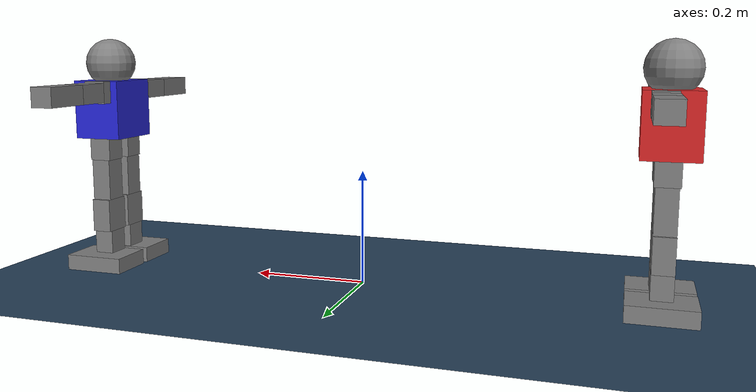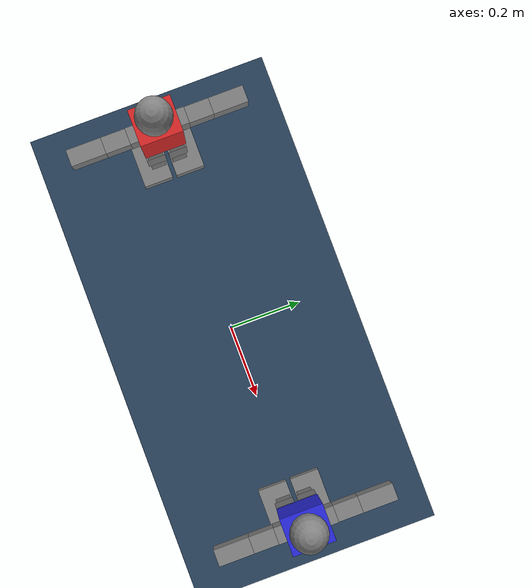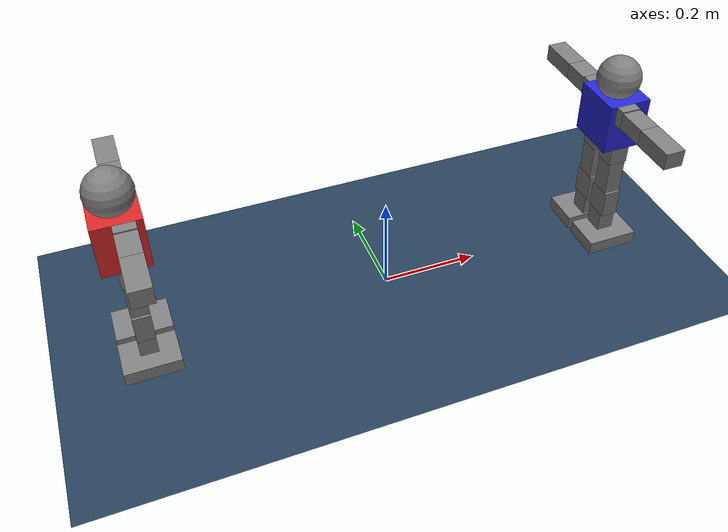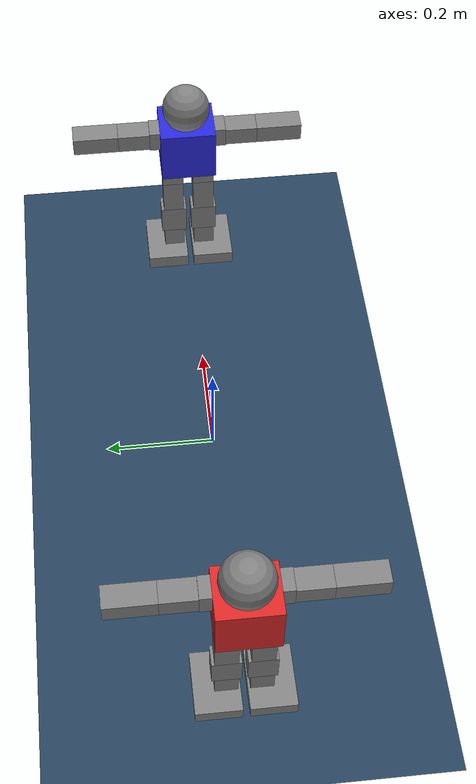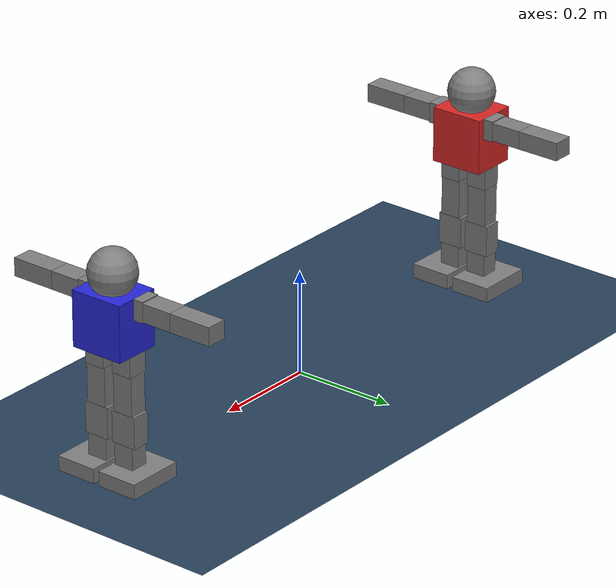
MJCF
<mujoco model="alpha1_fight">

  <compiler angle="radian" autolimits="true"/>
  <option timestep="0.005"
          solver="Newton"
          iterations="50"/>
  <default>
    <geom solref="0.05 1" solimp="0.9 0.95 0.001"/>
    <joint damping="0.25" armature="0.01"/>
  </default>

  <asset>
    <texture type="2d" name="groundplane" builtin="checker"
             rgb1="0.2 0.3 0.4" rgb2="0.1 0.2 0.3"
             markrgb="0.8 0.8 0.8" width="300" height="300"/>
    <material name="groundplane" texture="groundplane" texuniform="true"
              texrepeat="5 5" reflectance="0.2"/>
  </asset>

  <contact>
    <exclude body1="red_root" body2="red_Head_link"/>
    <exclude body1="red_root" body2="red_Left_Lateral_Thigh_link"/>
    <exclude body1="red_root" body2="red_Left_Thigt_link"/>
    <exclude body1="red_Left_Lateral_Thigh_link" body2="red_Left_Thigt_link"/>
    <exclude body1="red_root" body2="red_Left_Leg_Link"/>
    <exclude body1="red_Left_Lateral_Thigh_link" body2="red_Left_Leg_Link"/>
    <exclude body1="red_Left_Thigt_link" body2="red_Left_Leg_Link"/>
    <exclude body1="red_root" body2="red_Left_Ankle_link"/>
    <exclude body1="red_Left_Lateral_Thigh_link" body2="red_Left_Ankle_link"/>
    <exclude body1="red_Left_Thigt_link" body2="red_Left_Ankle_link"/>
    <exclude body1="red_Left_Leg_Link" body2="red_Left_Ankle_link"/>
    <exclude body1="red_root" body2="red_Left_Feet_link"/>
    <exclude body1="red_Left_Lateral_Thigh_link" body2="red_Left_Feet_link"/>
    <exclude body1="red_Left_Thigt_link" body2="red_Left_Feet_link"/>
    <exclude body1="red_Left_Leg_Link" body2="red_Left_Feet_link"/>
    <exclude body1="red_Left_Ankle_link" body2="red_Left_Feet_link"/>
    <exclude body1="red_root" body2="red_Left_Shoulder_link"/>
    <exclude body1="red_root" body2="red_Left_Arm_link"/>
    <exclude body1="red_Left_Shoulder_link" body2="red_Left_Arm_link"/>
    <exclude body1="red_root" body2="red_Left_Hand_link"/>
    <exclude body1="red_Left_Shoulder_link" body2="red_Left_Hand_link"/>
    <exclude body1="red_Left_Arm_link" body2="red_Left_Hand_link"/>
    <exclude body1="red_root" body2="red_Right_Lateral_Thigh_link"/>
    <exclude body1="red_root" body2="red_Right_Thigh_link"/>
    <exclude body1="red_Right_Lateral_Thigh_link" body2="red_Right_Thigh_link"/>
    <exclude body1="red_root" body2="red_Right_Leg_link"/>
    <exclude body1="red_Right_Lateral_Thigh_link" body2="red_Right_Leg_link"/>
    <exclude body1="red_Right_Thigh_link" body2="red_Right_Leg_link"/>
    <exclude body1="red_root" body2="red_Right_Ankle_link"/>
    <exclude body1="red_Right_Lateral_Thigh_link" body2="red_Right_Ankle_link"/>
    <exclude body1="red_Right_Thigh_link" body2="red_Right_Ankle_link"/>
    <exclude body1="red_Right_Leg_link" body2="red_Right_Ankle_link"/>
    <exclude body1="red_root" body2="red_Right_Feet_link"/>
    <exclude body1="red_Right_Lateral_Thigh_link" body2="red_Right_Feet_link"/>
    <exclude body1="red_Right_Thigh_link" body2="red_Right_Feet_link"/>
    <exclude body1="red_Right_Leg_link" body2="red_Right_Feet_link"/>
    <exclude body1="red_Right_Ankle_link" body2="red_Right_Feet_link"/>
    <exclude body1="red_root" body2="red_Right_Shoulder_link"/>
    <exclude body1="red_root" body2="red_Right_Arm_link"/>
    <exclude body1="red_Right_Shoulder_link" body2="red_Right_Arm_link"/>
    <exclude body1="red_root" body2="red_Right_Hand_link"/>
    <exclude body1="red_Right_Shoulder_link" body2="red_Right_Hand_link"/>
    <exclude body1="red_Right_Arm_link" body2="red_Right_Hand_link"/>
    <exclude body1="blue_root" body2="blue_Head_link"/>
    <exclude body1="blue_root" body2="blue_Left_Lateral_Thigh_link"/>
    <exclude body1="blue_root" body2="blue_Left_Thigt_link"/>
    <exclude body1="blue_Left_Lateral_Thigh_link" body2="blue_Left_Thigt_link"/>
    <exclude body1="blue_root" body2="blue_Left_Leg_Link"/>
    <exclude body1="blue_Left_Lateral_Thigh_link" body2="blue_Left_Leg_Link"/>
    <exclude body1="blue_Left_Thigt_link" body2="blue_Left_Leg_Link"/>
    <exclude body1="blue_root" body2="blue_Left_Ankle_link"/>
    <exclude body1="blue_Left_Lateral_Thigh_link" body2="blue_Left_Ankle_link"/>
    <exclude body1="blue_Left_Thigt_link" body2="blue_Left_Ankle_link"/>
    <exclude body1="blue_Left_Leg_Link" body2="blue_Left_Ankle_link"/>
    <exclude body1="blue_root" body2="blue_Left_Feet_link"/>
    <exclude body1="blue_Left_Lateral_Thigh_link" body2="blue_Left_Feet_link"/>
    <exclude body1="blue_Left_Thigt_link" body2="blue_Left_Feet_link"/>
    <exclude body1="blue_Left_Leg_Link" body2="blue_Left_Feet_link"/>
    <exclude body1="blue_Left_Ankle_link" body2="blue_Left_Feet_link"/>
    <exclude body1="blue_root" body2="blue_Left_Shoulder_link"/>
    <exclude body1="blue_root" body2="blue_Left_Arm_link"/>
    <exclude body1="blue_Left_Shoulder_link" body2="blue_Left_Arm_link"/>
    <exclude body1="blue_root" body2="blue_Left_Hand_link"/>
    <exclude body1="blue_Left_Shoulder_link" body2="blue_Left_Hand_link"/>
    <exclude body1="blue_Left_Arm_link" body2="blue_Left_Hand_link"/>
    <exclude body1="blue_root" body2="blue_Right_Lateral_Thigh_link"/>
    <exclude body1="blue_root" body2="blue_Right_Thigh_link"/>
    <exclude body1="blue_Right_Lateral_Thigh_link" body2="blue_Right_Thigh_link"/>
    <exclude body1="blue_root" body2="blue_Right_Leg_link"/>
    <exclude body1="blue_Right_Lateral_Thigh_link" body2="blue_Right_Leg_link"/>
    <exclude body1="blue_Right_Thigh_link" body2="blue_Right_Leg_link"/>
    <exclude body1="blue_root" body2="blue_Right_Ankle_link"/>
    <exclude body1="blue_Right_Lateral_Thigh_link" body2="blue_Right_Ankle_link"/>
    <exclude body1="blue_Right_Thigh_link" body2="blue_Right_Ankle_link"/>
    <exclude body1="blue_Right_Leg_link" body2="blue_Right_Ankle_link"/>
    <exclude body1="blue_root" body2="blue_Right_Feet_link"/>
    <exclude body1="blue_Right_Lateral_Thigh_link" body2="blue_Right_Feet_link"/>
    <exclude body1="blue_Right_Thigh_link" body2="blue_Right_Feet_link"/>
    <exclude body1="blue_Right_Leg_link" body2="blue_Right_Feet_link"/>
    <exclude body1="blue_Right_Ankle_link" body2="blue_Right_Feet_link"/>
    <exclude body1="blue_root" body2="blue_Right_Shoulder_link"/>
    <exclude body1="blue_root" body2="blue_Right_Arm_link"/>
    <exclude body1="blue_Right_Shoulder_link" body2="blue_Right_Arm_link"/>
    <exclude body1="blue_root" body2="blue_Right_Hand_link"/>
    <exclude body1="blue_Right_Shoulder_link" body2="blue_Right_Hand_link"/>
    <exclude body1="blue_Right_Arm_link" body2="blue_Right_Hand_link"/>
  </contact>

  <worldbody>
    <light pos="0 0 3" dir="0 0 -1" diffuse="0.8 0.8 0.8"/>
    <geom name="floor" size="3 3 0.1" type="plane" material="groundplane"
          condim="3" friction="1 0.1 0.01"/>
    <body name="red_root" pos="-0.5 0 0.298" quat="1.000000 0.000000 0.000000 0.000000">
      <freejoint name="red_freejoint"/>
      <geom name="red_Body_link_col0" type="box" size="0.045 0.0525 0.0535" pos="0.0 0.0 0.0" quat="1.000000 0.000000 0.000000 0.000000" rgba="0.85 0.15 0.15 1" condim="3"/>
      <inertial pos="0.0 0.0 0.0" mass="0.42" diaginertia="0.00078659 0.000684215 0.000669375"/>
      <body name="red_Head_link" pos="0.0 0.0 0.0855" quat="1.000000 0.000000 0.000000 0.000000">
        <geom name="red_Head_link_col0" type="sphere" size="0.045" pos="0.0 0.0 0.0" condim="3"/>
        <inertial pos="0.0 0.0 0.0" mass="0.066" diaginertia="3.7125e-05 3.7125e-05 3.7125e-05"/>
      </body>
      <body name="red_Left_Lateral_Thigh_link" pos="0.0025 0.03 -0.0535" quat="0.707105 0.000000 0.707108 0.000000">
        <joint name="red_Left_Lateral_Thigh_link_joint" type="hinge" axis="0.0 0.0 1.0" range="-1.0 1.93" frictionloss="0.15"/>
        <geom name="red_Left_Lateral_Thigh_link_col0" type="box" size="0.02 0.02 0.02" pos="0.02 0.0 0.0" quat="0.707105 0.000000 -0.707108 0.000000" condim="3"/>
        <inertial pos="0.0 0.0 0.0" mass="0.07" diaginertia="1.8667e-05 1.8667e-05 1.8667e-05"/>
        <body name="red_Left_Thigt_link" pos="0.0395 0.0 0.0" quat="0.499998 0.500000 -0.500000 0.500002">
          <joint name="red_Left_Thigt_link_joint" type="hinge" axis="0.0 0.0 1.0" range="-1.57 1.57" frictionloss="0.15"/>
          <geom name="red_Left_Thigt_link_col0" type="box" size="0.0175 0.02 0.0375" pos="0.0 -0.0375 0.0" quat="0.707105 -0.707108 0.000000 0.000000" condim="3"/>
          <inertial pos="0.0 0.0 0.0" mass="0.115" diaginertia="6.924e-05 6.5646e-05 2.7073e-05"/>
          <body name="red_Left_Leg_Link" pos="0.0 -0.075 0.0" quat="1.000000 0.000000 0.000000 0.000000">
            <joint name="red_Left_Leg_Link_joint" type="hinge" axis="0.0 0.0 1.0" range="-2.3 0.7" frictionloss="0.15"/>
            <geom name="red_Left_Leg_Link_col0" type="box" size="0.0175 0.025 0.03" pos="0.0 -0.03 0.0" quat="0.707105 -0.707108 0.000000 0.000000" condim="3"/>
            <inertial pos="0.0 0.0 0.0" mass="0.11" diaginertia="5.5917e-05 4.4229e-05 3.4146e-05"/>
            <body name="red_Left_Ankle_link" pos="0.0 -0.06 0.0" quat="1.000000 0.000000 0.000000 0.000000">
              <joint name="red_Right_Ankle_link_joint" type="hinge" axis="0.0 0.0 1.0" range="-1.57 1.57" frictionloss="0.15"/>
              <geom name="red_Left_Ankle_link_col0" type="box" size="0.0175 0.02 0.021" pos="0.0 -0.021 0.0" quat="0.707105 -0.707108 0.000000 0.000000" condim="3"/>
              <inertial pos="0.0 0.0 0.0" mass="0.055" diaginertia="1.5418e-05 1.37e-05 1.2948e-05"/>
              <body name="red_Left_Feet_link" pos="0.0 -0.047 0.0" quat="0.499998 -0.500000 0.500002 -0.500000">
                <joint name="red_Left_Feet_link_joint" type="hinge" axis="0.0 0.0 1.0" range="-1.57 0.43" frictionloss="0.15"/>
                <geom name="red_Left_Feet_link_col0" type="box" size="0.055 0.04 0.014" pos="0.009 0.016 0.0" quat="-0.707108 0.000002 0.707105 0.000002" condim="3"/>
                <inertial pos="0.0 0.0 0.0" mass="0.07" diaginertia="4.1907e-05 7.5157e-05 0.000107917"/>
              </body>
            </body>
          </body>
        </body>
      </body>
      <body name="red_Left_Shoulder_link" pos="0.012 0.0525 0.0335" quat="0.707105 0.707108 0.000000 0.000000">
        <joint name="red_Left_Shoulder_link_joint" type="hinge" axis="0.0 0.0 1.0" range="0.0 3.1416" frictionloss="0.15"/>
        <geom name="red_Left_Shoulder_link_col0" type="box" size="0.02 0.01 0.02" pos="0.0 -0.0 -0.01" quat="0.707105 -0.707108 0.000000 0.000000" condim="3"/>
        <inertial pos="0.0 0.0 0.0" mass="0.06" diaginertia="1e-05 1.6e-05 1e-05"/>
        <body name="red_Left_Arm_link" pos="0.0 -0.0 -0.02" quat="0.499998 -0.500000 0.500002 -0.500000">
          <joint name="red_Left_Arm_link_joint" type="hinge" axis="0.0 0.0 1.0" range="-1.57 1.57" frictionloss="0.15"/>
          <geom name="red_Left_Arm_link_col0" type="box" size="0.02 0.03 0.0175" pos="0.0 0.03 0.0" quat="0.707105 0.000000 -0.707108 0.000000" condim="3"/>
          <inertial pos="0.0 0.0 0.0" mass="0.0475" diaginertia="1.9099e-05 1.1182e-05 2.0583e-05"/>
          <body name="red_Left_Hand_link" pos="0.0 0.06 0.0" quat="1.000000 0.000000 0.000000 0.000000">
            <joint name="red_Left_Hand_link_joint" type="hinge" axis="0.0 0.0 1.0" range="-1.57 1.57" frictionloss="0.15"/>
            <geom name="red_Left_Hand_link_col0" type="box" size="0.02 0.0425 0.0175" pos="0.0 0.0425 0.0" quat="0.707105 0.000000 -0.707108 0.000000" condim="3"/>
            <inertial pos="0.0 0.0 0.0" mass="0.02" diaginertia="1.4083e-05 4.708e-06 1.4708e-05"/>
          </body>
        </body>
      </body>
      <body name="red_Right_Lateral_Thigh_link" pos="0.0025 -0.03 -0.0535" quat="0.707105 0.000000 0.707108 0.000000">
        <joint name="red_Right_Lateral_Thigh_link_joint" type="hinge" axis="0.0 0.0 1.0" range="-1.93 1.0" frictionloss="0.15"/>
        <geom name="red_Right_Lateral_Thigh_link_col0" type="box" size="0.02 0.02 0.02" pos="0.02 0.0 0.0" quat="0.707105 0.000000 -0.707108 0.000000" condim="3"/>
        <inertial pos="0.0 0.0 0.0" mass="0.07" diaginertia="1.8667e-05 1.8667e-05 1.8667e-05"/>
        <body name="red_Right_Thigh_link" pos="0.0395 0.0 0.0" quat="0.499998 0.500000 -0.500000 0.500002">
          <joint name="red_Right_Thigh_link_joint" type="hinge" axis="0.0 0.0 1.0" range="-1.57 1.57" frictionloss="0.15"/>
          <geom name="red_Right_Thigh_link_col0" type="box" size="0.0175 0.02 0.0375" pos="0.0 -0.0375 0.0" quat="0.707105 -0.707108 0.000000 0.000000" condim="3"/>
          <inertial pos="0.0 0.0 0.0" mass="0.115" diaginertia="6.924e-05 6.5646e-05 2.7073e-05"/>
          <body name="red_Right_Leg_link" pos="0.0 -0.075 0.0" quat="1.000000 0.000000 0.000000 0.000000">
            <joint name="red_Right_Leg_link_joint" type="hinge" axis="0.0 0.0 1.0" range="-2.3 0.7" frictionloss="0.15"/>
            <geom name="red_Right_Leg_link_col0" type="box" size="0.0175 0.025 0.03" pos="0.0 -0.03 0.0" quat="0.707105 -0.707108 0.000000 0.000000" condim="3"/>
            <inertial pos="0.0 0.0 0.0" mass="0.11" diaginertia="5.5917e-05 4.4229e-05 3.4146e-05"/>
            <body name="red_Right_Ankle_link" pos="0.0 -0.06 0.0" quat="1.000000 0.000000 0.000000 0.000000">
              <joint name="red_Right_ankle_link_joint" type="hinge" axis="0.0 0.0 1.0" range="-1.57 1.57" frictionloss="0.15"/>
              <geom name="red_Right_Ankle_link_col0" type="box" size="0.0175 0.02 0.021" pos="0.0 -0.021 0.0" quat="0.707105 -0.707108 0.000000 0.000000" condim="3"/>
              <inertial pos="0.0 0.0 0.0" mass="0.055" diaginertia="1.5418e-05 1.37e-05 1.2948e-05"/>
              <body name="red_Right_Feet_link" pos="0.0 -0.047 0.0" quat="0.499998 -0.500000 0.500002 -0.500000">
                <joint name="red_Right_Feet_link_joint" type="hinge" axis="0.0 0.0 1.0" range="-0.43 1.57" frictionloss="0.15"/>
                <geom name="red_Right_Feet_link_col0" type="box" size="0.055 0.04 0.014" pos="0.009 -0.016 0.0" quat="-0.707108 0.000002 0.707105 0.000002" condim="3"/>
                <inertial pos="0.0 0.0 0.0" mass="0.07" diaginertia="4.1907e-05 7.5157e-05 0.000107917"/>
              </body>
            </body>
          </body>
        </body>
      </body>
      <body name="red_Right_Shoulder_link" pos="0.012 -0.0525 0.0335" quat="0.707105 0.707108 0.000000 0.000000">
        <joint name="red_Right_Shoulder_link_joint" type="hinge" axis="0.0 0.0 1.0" range="0.0 3.1416" frictionloss="0.15"/>
        <geom name="red_Right_Shoulder_link_col0" type="box" size="0.02 0.01 0.02" pos="0.0 0.0 0.01" quat="0.707105 -0.707108 0.000000 0.000000" condim="3"/>
        <inertial pos="0.0 0.0 0.0" mass="0.06" diaginertia="1e-05 1.6e-05 1e-05"/>
        <body name="red_Right_Arm_link" pos="0.0 0.0 0.02" quat="0.499998 -0.500000 0.500002 -0.500000">
          <joint name="red_Right_Arm_link_joint" type="hinge" axis="0.0 0.0 1.0" range="-1.57 1.57" frictionloss="0.15"/>
          <geom name="red_Right_Arm_link_col0" type="box" size="0.02 0.03 0.0175" pos="0.0 -0.03 0.0" quat="0.707105 0.000000 -0.707108 0.000000" condim="3"/>
          <inertial pos="0.0 0.0 0.0" mass="0.0475" diaginertia="1.9099e-05 1.1182e-05 2.0583e-05"/>
          <body name="red_Right_Hand_link" pos="0.0 -0.06 0.0" quat="1.000000 0.000000 0.000000 0.000000">
            <joint name="red_Right_Hand_link_joint" type="hinge" axis="0.0 0.0 1.0" range="-1.57 1.57" frictionloss="0.15"/>
            <geom name="red_Right_Hand_link_col0" type="box" size="0.02 0.0425 0.0175" pos="0.0 -0.0425 0.0" quat="0.707105 0.000000 -0.707108 0.000000" condim="3"/>
            <inertial pos="0.0 0.0 0.0" mass="0.02" diaginertia="1.4083e-05 4.708e-06 1.4708e-05"/>
          </body>
        </body>
      </body>
    </body>
    <body name="blue_root" pos="0.5 0 0.298" quat="0.000001 0.000000 0.000000 1.000000">
      <freejoint name="blue_freejoint"/>
      <geom name="blue_Body_link_col0" type="box" size="0.045 0.0525 0.0535" pos="0.0 0.0 0.0" quat="1.000000 0.000000 0.000000 0.000000" rgba="0.15 0.15 0.85 1" condim="3"/>
      <inertial pos="0.0 0.0 0.0" mass="0.42" diaginertia="0.00078659 0.000684215 0.000669375"/>
      <body name="blue_Head_link" pos="0.0 0.0 0.0855" quat="1.000000 0.000000 0.000000 0.000000">
        <geom name="blue_Head_link_col0" type="sphere" size="0.045" pos="0.0 0.0 0.0" condim="3"/>
        <inertial pos="0.0 0.0 0.0" mass="0.066" diaginertia="3.7125e-05 3.7125e-05 3.7125e-05"/>
      </body>
      <body name="blue_Left_Lateral_Thigh_link" pos="0.0025 0.03 -0.0535" quat="0.707105 0.000000 0.707108 0.000000">
        <joint name="blue_Left_Lateral_Thigh_link_joint" type="hinge" axis="0.0 0.0 1.0" range="-1.0 1.93" frictionloss="0.15"/>
        <geom name="blue_Left_Lateral_Thigh_link_col0" type="box" size="0.02 0.02 0.02" pos="0.02 0.0 0.0" quat="0.707105 0.000000 -0.707108 0.000000" condim="3"/>
        <inertial pos="0.0 0.0 0.0" mass="0.07" diaginertia="1.8667e-05 1.8667e-05 1.8667e-05"/>
        <body name="blue_Left_Thigt_link" pos="0.0395 0.0 0.0" quat="0.499998 0.500000 -0.500000 0.500002">
          <joint name="blue_Left_Thigt_link_joint" type="hinge" axis="0.0 0.0 1.0" range="-1.57 1.57" frictionloss="0.15"/>
          <geom name="blue_Left_Thigt_link_col0" type="box" size="0.0175 0.02 0.0375" pos="0.0 -0.0375 0.0" quat="0.707105 -0.707108 0.000000 0.000000" condim="3"/>
          <inertial pos="0.0 0.0 0.0" mass="0.115" diaginertia="6.924e-05 6.5646e-05 2.7073e-05"/>
          <body name="blue_Left_Leg_Link" pos="0.0 -0.075 0.0" quat="1.000000 0.000000 0.000000 0.000000">
            <joint name="blue_Left_Leg_Link_joint" type="hinge" axis="0.0 0.0 1.0" range="-2.3 0.7" frictionloss="0.15"/>
            <geom name="blue_Left_Leg_Link_col0" type="box" size="0.0175 0.025 0.03" pos="0.0 -0.03 0.0" quat="0.707105 -0.707108 0.000000 0.000000" condim="3"/>
            <inertial pos="0.0 0.0 0.0" mass="0.11" diaginertia="5.5917e-05 4.4229e-05 3.4146e-05"/>
            <body name="blue_Left_Ankle_link" pos="0.0 -0.06 0.0" quat="1.000000 0.000000 0.000000 0.000000">
              <joint name="blue_Right_Ankle_link_joint" type="hinge" axis="0.0 0.0 1.0" range="-1.57 1.57" frictionloss="0.15"/>
              <geom name="blue_Left_Ankle_link_col0" type="box" size="0.0175 0.02 0.021" pos="0.0 -0.021 0.0" quat="0.707105 -0.707108 0.000000 0.000000" condim="3"/>
              <inertial pos="0.0 0.0 0.0" mass="0.055" diaginertia="1.5418e-05 1.37e-05 1.2948e-05"/>
              <body name="blue_Left_Feet_link" pos="0.0 -0.047 0.0" quat="0.499998 -0.500000 0.500002 -0.500000">
                <joint name="blue_Left_Feet_link_joint" type="hinge" axis="0.0 0.0 1.0" range="-1.57 0.43" frictionloss="0.15"/>
                <geom name="blue_Left_Feet_link_col0" type="box" size="0.055 0.04 0.014" pos="0.009 0.016 0.0" quat="-0.707108 0.000002 0.707105 0.000002" condim="3"/>
                <inertial pos="0.0 0.0 0.0" mass="0.07" diaginertia="4.1907e-05 7.5157e-05 0.000107917"/>
              </body>
            </body>
          </body>
        </body>
      </body>
      <body name="blue_Left_Shoulder_link" pos="0.012 0.0525 0.0335" quat="0.707105 0.707108 0.000000 0.000000">
        <joint name="blue_Left_Shoulder_link_joint" type="hinge" axis="0.0 0.0 1.0" range="0.0 3.1416" frictionloss="0.15"/>
        <geom name="blue_Left_Shoulder_link_col0" type="box" size="0.02 0.01 0.02" pos="0.0 -0.0 -0.01" quat="0.707105 -0.707108 0.000000 0.000000" condim="3"/>
        <inertial pos="0.0 0.0 0.0" mass="0.06" diaginertia="1e-05 1.6e-05 1e-05"/>
        <body name="blue_Left_Arm_link" pos="0.0 -0.0 -0.02" quat="0.499998 -0.500000 0.500002 -0.500000">
          <joint name="blue_Left_Arm_link_joint" type="hinge" axis="0.0 0.0 1.0" range="-1.57 1.57" frictionloss="0.15"/>
          <geom name="blue_Left_Arm_link_col0" type="box" size="0.02 0.03 0.0175" pos="0.0 0.03 0.0" quat="0.707105 0.000000 -0.707108 0.000000" condim="3"/>
          <inertial pos="0.0 0.0 0.0" mass="0.0475" diaginertia="1.9099e-05 1.1182e-05 2.0583e-05"/>
          <body name="blue_Left_Hand_link" pos="0.0 0.06 0.0" quat="1.000000 0.000000 0.000000 0.000000">
            <joint name="blue_Left_Hand_link_joint" type="hinge" axis="0.0 0.0 1.0" range="-1.57 1.57" frictionloss="0.15"/>
            <geom name="blue_Left_Hand_link_col0" type="box" size="0.02 0.0425 0.0175" pos="0.0 0.0425 0.0" quat="0.707105 0.000000 -0.707108 0.000000" condim="3"/>
            <inertial pos="0.0 0.0 0.0" mass="0.02" diaginertia="1.4083e-05 4.708e-06 1.4708e-05"/>
          </body>
        </body>
      </body>
      <body name="blue_Right_Lateral_Thigh_link" pos="0.0025 -0.03 -0.0535" quat="0.707105 0.000000 0.707108 0.000000">
        <joint name="blue_Right_Lateral_Thigh_link_joint" type="hinge" axis="0.0 0.0 1.0" range="-1.93 1.0" frictionloss="0.15"/>
        <geom name="blue_Right_Lateral_Thigh_link_col0" type="box" size="0.02 0.02 0.02" pos="0.02 0.0 0.0" quat="0.707105 0.000000 -0.707108 0.000000" condim="3"/>
        <inertial pos="0.0 0.0 0.0" mass="0.07" diaginertia="1.8667e-05 1.8667e-05 1.8667e-05"/>
        <body name="blue_Right_Thigh_link" pos="0.0395 0.0 0.0" quat="0.499998 0.500000 -0.500000 0.500002">
          <joint name="blue_Right_Thigh_link_joint" type="hinge" axis="0.0 0.0 1.0" range="-1.57 1.57" frictionloss="0.15"/>
          <geom name="blue_Right_Thigh_link_col0" type="box" size="0.0175 0.02 0.0375" pos="0.0 -0.0375 0.0" quat="0.707105 -0.707108 0.000000 0.000000" condim="3"/>
          <inertial pos="0.0 0.0 0.0" mass="0.115" diaginertia="6.924e-05 6.5646e-05 2.7073e-05"/>
          <body name="blue_Right_Leg_link" pos="0.0 -0.075 0.0" quat="1.000000 0.000000 0.000000 0.000000">
            <joint name="blue_Right_Leg_link_joint" type="hinge" axis="0.0 0.0 1.0" range="-2.3 0.7" frictionloss="0.15"/>
            <geom name="blue_Right_Leg_link_col0" type="box" size="0.0175 0.025 0.03" pos="0.0 -0.03 0.0" quat="0.707105 -0.707108 0.000000 0.000000" condim="3"/>
            <inertial pos="0.0 0.0 0.0" mass="0.11" diaginertia="5.5917e-05 4.4229e-05 3.4146e-05"/>
            <body name="blue_Right_Ankle_link" pos="0.0 -0.06 0.0" quat="1.000000 0.000000 0.000000 0.000000">
              <joint name="blue_Right_ankle_link_joint" type="hinge" axis="0.0 0.0 1.0" range="-1.57 1.57" frictionloss="0.15"/>
              <geom name="blue_Right_Ankle_link_col0" type="box" size="0.0175 0.02 0.021" pos="0.0 -0.021 0.0" quat="0.707105 -0.707108 0.000000 0.000000" condim="3"/>
              <inertial pos="0.0 0.0 0.0" mass="0.055" diaginertia="1.5418e-05 1.37e-05 1.2948e-05"/>
              <body name="blue_Right_Feet_link" pos="0.0 -0.047 0.0" quat="0.499998 -0.500000 0.500002 -0.500000">
                <joint name="blue_Right_Feet_link_joint" type="hinge" axis="0.0 0.0 1.0" range="-0.43 1.57" frictionloss="0.15"/>
                <geom name="blue_Right_Feet_link_col0" type="box" size="0.055 0.04 0.014" pos="0.009 -0.016 0.0" quat="-0.707108 0.000002 0.707105 0.000002" condim="3"/>
                <inertial pos="0.0 0.0 0.0" mass="0.07" diaginertia="4.1907e-05 7.5157e-05 0.000107917"/>
              </body>
            </body>
          </body>
        </body>
      </body>
      <body name="blue_Right_Shoulder_link" pos="0.012 -0.0525 0.0335" quat="0.707105 0.707108 0.000000 0.000000">
        <joint name="blue_Right_Shoulder_link_joint" type="hinge" axis="0.0 0.0 1.0" range="0.0 3.1416" frictionloss="0.15"/>
        <geom name="blue_Right_Shoulder_link_col0" type="box" size="0.02 0.01 0.02" pos="0.0 0.0 0.01" quat="0.707105 -0.707108 0.000000 0.000000" condim="3"/>
        <inertial pos="0.0 0.0 0.0" mass="0.06" diaginertia="1e-05 1.6e-05 1e-05"/>
        <body name="blue_Right_Arm_link" pos="0.0 0.0 0.02" quat="0.499998 -0.500000 0.500002 -0.500000">
          <joint name="blue_Right_Arm_link_joint" type="hinge" axis="0.0 0.0 1.0" range="-1.57 1.57" frictionloss="0.15"/>
          <geom name="blue_Right_Arm_link_col0" type="box" size="0.02 0.03 0.0175" pos="0.0 -0.03 0.0" quat="0.707105 0.000000 -0.707108 0.000000" condim="3"/>
          <inertial pos="0.0 0.0 0.0" mass="0.0475" diaginertia="1.9099e-05 1.1182e-05 2.0583e-05"/>
          <body name="blue_Right_Hand_link" pos="0.0 -0.06 0.0" quat="1.000000 0.000000 0.000000 0.000000">
            <joint name="blue_Right_Hand_link_joint" type="hinge" axis="0.0 0.0 1.0" range="-1.57 1.57" frictionloss="0.15"/>
            <geom name="blue_Right_Hand_link_col0" type="box" size="0.02 0.0425 0.0175" pos="0.0 -0.0425 0.0" quat="0.707105 0.000000 -0.707108 0.000000" condim="3"/>
            <inertial pos="0.0 0.0 0.0" mass="0.02" diaginertia="1.4083e-05 4.708e-06 1.4708e-05"/>
          </body>
        </body>
      </body>
    </body>
  </worldbody>

  <actuator>
    <position name="act_red_Left_Lateral_Thigh_link_joint" joint="red_Left_Lateral_Thigh_link_joint" kp="8" kv="10" ctrlrange="-1.0 1.93" forcerange="-1.5 1.5"/>
    <position name="act_red_Left_Thigt_link_joint" joint="red_Left_Thigt_link_joint" kp="8" kv="10" ctrlrange="-1.57 1.57" forcerange="-1.5 1.5"/>
    <position name="act_red_Left_Leg_Link_joint" joint="red_Left_Leg_Link_joint" kp="8" kv="10" ctrlrange="-2.3 0.7" forcerange="-1.5 1.5"/>
    <position name="act_red_Right_Ankle_link_joint" joint="red_Right_Ankle_link_joint" kp="8" kv="10" ctrlrange="-1.57 1.57" forcerange="-1.5 1.5"/>
    <position name="act_red_Left_Feet_link_joint" joint="red_Left_Feet_link_joint" kp="8" kv="10" ctrlrange="-1.57 0.43" forcerange="-1.5 1.5"/>
    <position name="act_red_Left_Shoulder_link_joint" joint="red_Left_Shoulder_link_joint" kp="8" kv="10" ctrlrange="0.0 3.1416" forcerange="-1.5 1.5"/>
    <position name="act_red_Left_Arm_link_joint" joint="red_Left_Arm_link_joint" kp="8" kv="10" ctrlrange="-1.57 1.57" forcerange="-1.5 1.5"/>
    <position name="act_red_Left_Hand_link_joint" joint="red_Left_Hand_link_joint" kp="8" kv="10" ctrlrange="-1.57 1.57" forcerange="-1.5 1.5"/>
    <position name="act_red_Right_Lateral_Thigh_link_joint" joint="red_Right_Lateral_Thigh_link_joint" kp="8" kv="10" ctrlrange="-1.93 1.0" forcerange="-1.5 1.5"/>
    <position name="act_red_Right_Thigh_link_joint" joint="red_Right_Thigh_link_joint" kp="8" kv="10" ctrlrange="-1.57 1.57" forcerange="-1.5 1.5"/>
    <position name="act_red_Right_Leg_link_joint" joint="red_Right_Leg_link_joint" kp="8" kv="10" ctrlrange="-2.3 0.7" forcerange="-1.5 1.5"/>
    <position name="act_red_Right_ankle_link_joint" joint="red_Right_ankle_link_joint" kp="8" kv="10" ctrlrange="-1.57 1.57" forcerange="-1.5 1.5"/>
    <position name="act_red_Right_Feet_link_joint" joint="red_Right_Feet_link_joint" kp="8" kv="10" ctrlrange="-0.43 1.57" forcerange="-1.5 1.5"/>
    <position name="act_red_Right_Shoulder_link_joint" joint="red_Right_Shoulder_link_joint" kp="8" kv="10" ctrlrange="0.0 3.1416" forcerange="-1.5 1.5"/>
    <position name="act_red_Right_Arm_link_joint" joint="red_Right_Arm_link_joint" kp="8" kv="10" ctrlrange="-1.57 1.57" forcerange="-1.5 1.5"/>
    <position name="act_red_Right_Hand_link_joint" joint="red_Right_Hand_link_joint" kp="8" kv="10" ctrlrange="-1.57 1.57" forcerange="-1.5 1.5"/>
    <position name="act_blue_Left_Lateral_Thigh_link_joint" joint="blue_Left_Lateral_Thigh_link_joint" kp="8" kv="10" ctrlrange="-1.0 1.93" forcerange="-1.5 1.5"/>
    <position name="act_blue_Left_Thigt_link_joint" joint="blue_Left_Thigt_link_joint" kp="8" kv="10" ctrlrange="-1.57 1.57" forcerange="-1.5 1.5"/>
    <position name="act_blue_Left_Leg_Link_joint" joint="blue_Left_Leg_Link_joint" kp="8" kv="10" ctrlrange="-2.3 0.7" forcerange="-1.5 1.5"/>
    <position name="act_blue_Right_Ankle_link_joint" joint="blue_Right_Ankle_link_joint" kp="8" kv="10" ctrlrange="-1.57 1.57" forcerange="-1.5 1.5"/>
    <position name="act_blue_Left_Feet_link_joint" joint="blue_Left_Feet_link_joint" kp="8" kv="10" ctrlrange="-1.57 0.43" forcerange="-1.5 1.5"/>
    <position name="act_blue_Left_Shoulder_link_joint" joint="blue_Left_Shoulder_link_joint" kp="8" kv="10" ctrlrange="0.0 3.1416" forcerange="-1.5 1.5"/>
    <position name="act_blue_Left_Arm_link_joint" joint="blue_Left_Arm_link_joint" kp="8" kv="10" ctrlrange="-1.57 1.57" forcerange="-1.5 1.5"/>
    <position name="act_blue_Left_Hand_link_joint" joint="blue_Left_Hand_link_joint" kp="8" kv="10" ctrlrange="-1.57 1.57" forcerange="-1.5 1.5"/>
    <position name="act_blue_Right_Lateral_Thigh_link_joint" joint="blue_Right_Lateral_Thigh_link_joint" kp="8" kv="10" ctrlrange="-1.93 1.0" forcerange="-1.5 1.5"/>
    <position name="act_blue_Right_Thigh_link_joint" joint="blue_Right_Thigh_link_joint" kp="8" kv="10" ctrlrange="-1.57 1.57" forcerange="-1.5 1.5"/>
    <position name="act_blue_Right_Leg_link_joint" joint="blue_Right_Leg_link_joint" kp="8" kv="10" ctrlrange="-2.3 0.7" forcerange="-1.5 1.5"/>
    <position name="act_blue_Right_ankle_link_joint" joint="blue_Right_ankle_link_joint" kp="8" kv="10" ctrlrange="-1.57 1.57" forcerange="-1.5 1.5"/>
    <position name="act_blue_Right_Feet_link_joint" joint="blue_Right_Feet_link_joint" kp="8" kv="10" ctrlrange="-0.43 1.57" forcerange="-1.5 1.5"/>
    <position name="act_blue_Right_Shoulder_link_joint" joint="blue_Right_Shoulder_link_joint" kp="8" kv="10" ctrlrange="0.0 3.1416" forcerange="-1.5 1.5"/>
    <position name="act_blue_Right_Arm_link_joint" joint="blue_Right_Arm_link_joint" kp="8" kv="10" ctrlrange="-1.57 1.57" forcerange="-1.5 1.5"/>
    <position name="act_blue_Right_Hand_link_joint" joint="blue_Right_Hand_link_joint" kp="8" kv="10" ctrlrange="-1.57 1.57" forcerange="-1.5 1.5"/>
  </actuator>

</mujoco>
